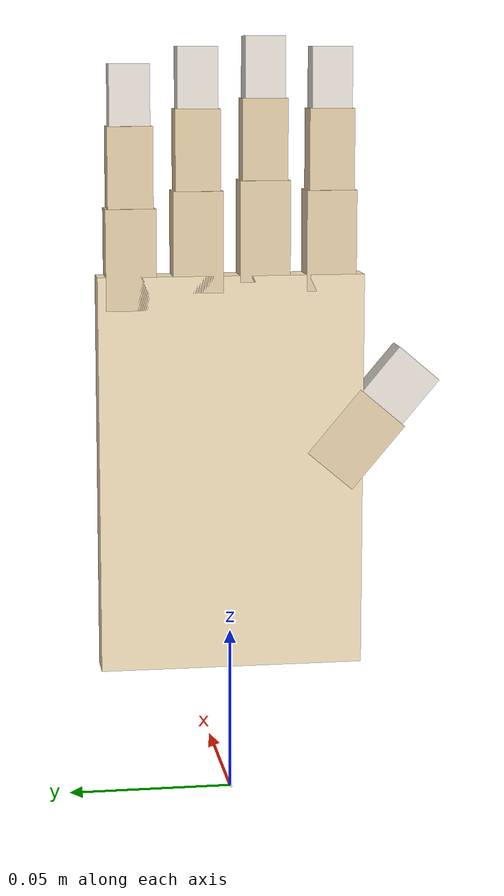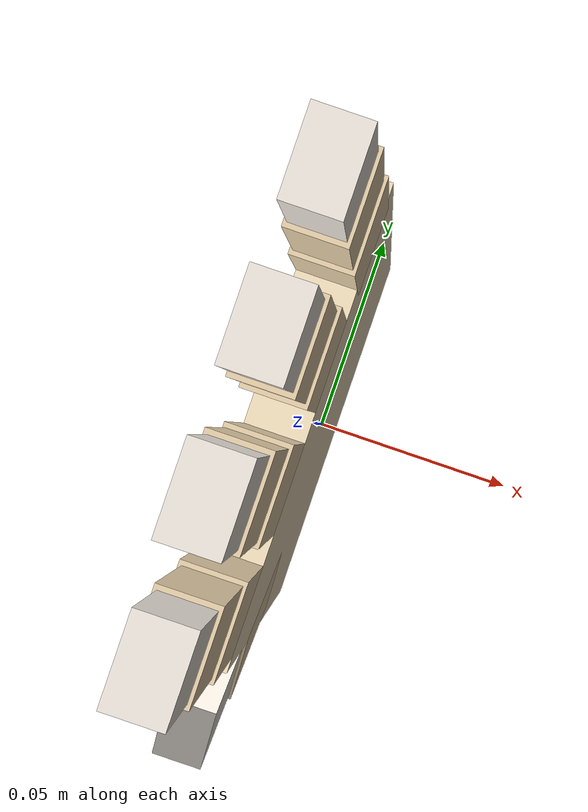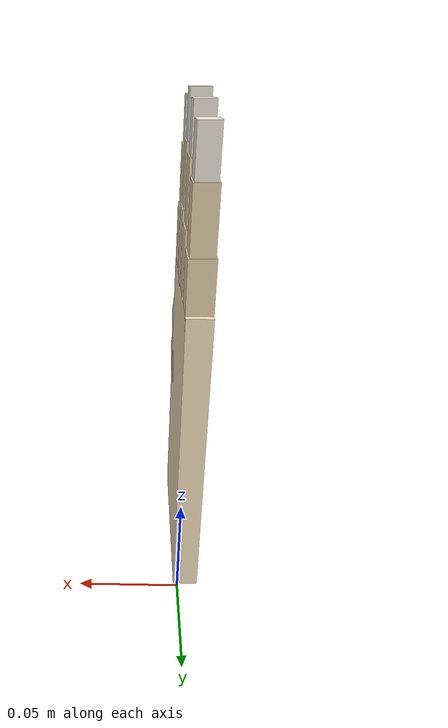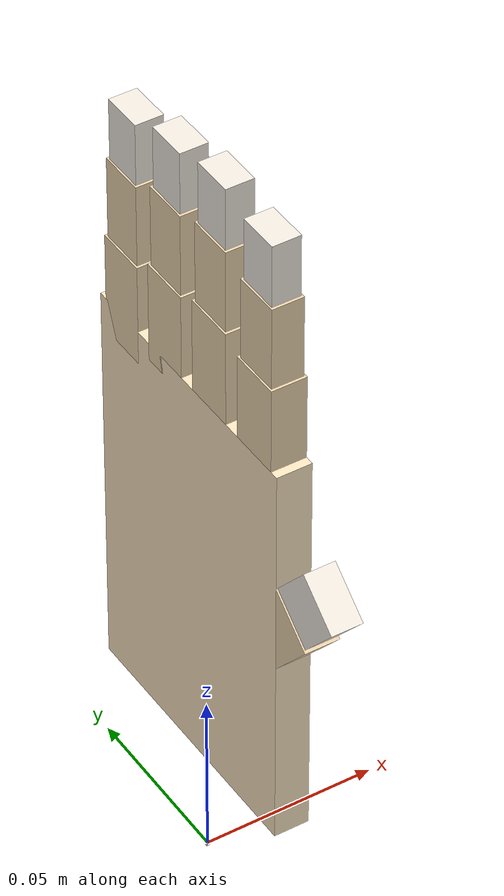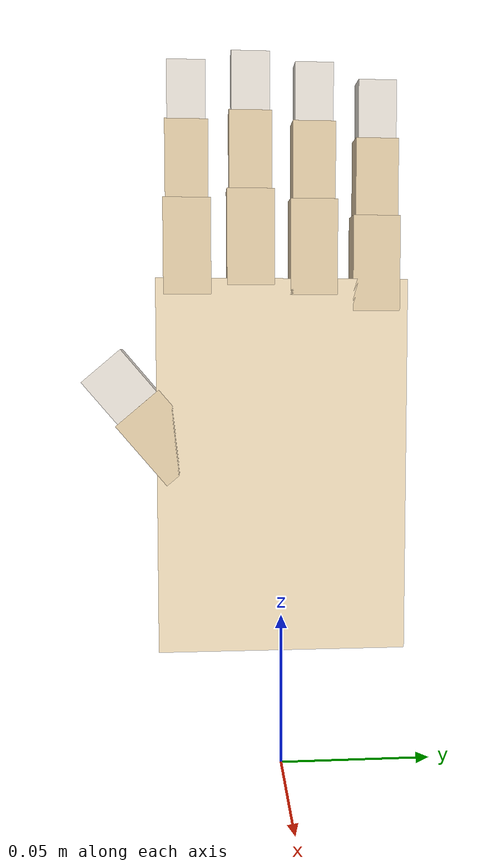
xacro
<?xml version="1.0"?>
<robot name="robotic_hand" xmlns:xacro="http://wiki.ros.org/xacro">

  <!-- Define some properties -->
  <xacro:property name="hand_width" value="0.08" />
  <xacro:property name="hand_length" value="0.12" />
  <xacro:property name="hand_height" value="0.01" />

  <xacro:property name="finger_width" value="0.015" />
  <xacro:property name="finger_length" value="0.03" />
  <xacro:property name="finger_height" value="0.01" />

  <xacro:property name="thumb_width" value="0.018" />
  <xacro:property name="thumb_length" value="0.025" />

  <!-- Materials -->
  <material name="hand_material">
    <color rgba="0.95 0.87 0.73 1.0"/>  <!-- Skin tone -->
  </material>

  <material name="finger_material">
    <color rgba="0.92 0.83 0.68 1.0"/>  <!-- Slightly darker skin tone -->
  </material>

  <material name="palm_material">
    <color rgba="0.98 0.90 0.76 1.0"/>  <!-- Palm color -->
  </material>

  <material name="nail_material">
    <color rgba="0.95 0.92 0.88 1.0"/>  <!-- Nail color -->
  </material>

  <!-- Base world link for proper orientation -->
  <link name="world">
    <visual>
      <geometry>
        <box size="0.001 0.001 0.001"/>
      </geometry>
      <material name="hand_material"/>
      <origin xyz="0 0 0" rpy="0 0 0"/>
    </visual>
    <inertial>
      <mass value="0.001"/>
      <inertia ixx="0.000001" ixy="0" ixz="0" iyy="0.000001" iyz="0" izz="0.000001"/>
      <origin xyz="0 0 0" rpy="0 0 0"/>
    </inertial>
  </link>

  <!-- Base hand link -->
  <link name="hand_base">
    <visual>
      <geometry>
        <box size="${hand_length} ${hand_width} ${hand_height}"/>
      </geometry>
      <material name="palm_material"/>
      <origin xyz="0 0 0" rpy="0 0 0"/>
    </visual>
    <collision>
      <geometry>
        <box size="${hand_length} ${hand_width} ${hand_height}"/>
      </geometry>
      <origin xyz="0 0 0" rpy="0 0 0"/>
    </collision>
    <inertial>
      <mass value="0.5"/>
      <inertia ixx="0.001" ixy="0" ixz="0" iyy="0.001" iyz="0" izz="0.001"/>
      <origin xyz="0 0 0" rpy="0 0 0"/>
    </inertial>
  </link>

  <!-- Joint to orient hand properly (rotate so palm faces camera) -->
  <joint name="hand_orientation_joint" type="fixed">
    <parent link="world"/>
    <child link="hand_base"/>
    <origin xyz="0 0 0.1" rpy="0 -1.5708 0"/>
  </joint>

  <!-- Finger macro -->
  <xacro:macro name="finger" params="prefix x_pos y_pos z_pos rotation">

    <!-- Proximal phalanx (base of finger) -->
    <link name="${prefix}_proximal">
      <visual>
        <geometry>
          <box size="${finger_length} ${finger_width} ${finger_height}"/>
        </geometry>
        <material name="finger_material"/>
        <origin xyz="${finger_length/2} 0 0" rpy="0 0 0"/>
      </visual>
      <collision>
        <geometry>
          <box size="${finger_length} ${finger_width} ${finger_height}"/>
        </geometry>
        <origin xyz="${finger_length/2} 0 0" rpy="0 0 0"/>
      </collision>
      <inertial>
        <mass value="0.05"/>
        <inertia ixx="0.0001" ixy="0" ixz="0" iyy="0.0001" iyz="0" izz="0.0001"/>
        <origin xyz="${finger_length/2} 0 0" rpy="0 0 0"/>
      </inertial>
    </link>

    <!-- Middle phalanx -->
    <link name="${prefix}_middle">
      <visual>
        <geometry>
          <box size="${finger_length*0.8} ${finger_width*0.9} ${finger_height*0.9}"/>
        </geometry>
        <material name="finger_material"/>
        <origin xyz="${finger_length*0.4} 0 0" rpy="0 0 0"/>
      </visual>
      <collision>
        <geometry>
          <box size="${finger_length*0.8} ${finger_width*0.9} ${finger_height*0.9}"/>
        </geometry>
        <origin xyz="${finger_length*0.4} 0 0" rpy="0 0 0"/>
      </collision>
      <inertial>
        <mass value="0.03"/>
        <inertia ixx="0.0001" ixy="0" ixz="0" iyy="0.0001" iyz="0" izz="0.0001"/>
        <origin xyz="${finger_length*0.4} 0 0" rpy="0 0 0"/>
      </inertial>
    </link>

    <!-- Distal phalanx (tip of finger) -->
    <link name="${prefix}_distal">
      <visual>
        <geometry>
          <box size="${finger_length*0.6} ${finger_width*0.8} ${finger_height*0.8}"/>
        </geometry>
        <material name="nail_material"/>
        <origin xyz="${finger_length*0.3} 0 0" rpy="0 0 0"/>
      </visual>
      <collision>
        <geometry>
          <box size="${finger_length*0.6} ${finger_width*0.8} ${finger_height*0.8}"/>
        </geometry>
        <origin xyz="${finger_length*0.3} 0 0" rpy="0 0 0"/>
      </collision>
      <inertial>
        <mass value="0.02"/>
        <inertia ixx="0.0001" ixy="0" ixz="0" iyy="0.0001" iyz="0" izz="0.0001"/>
        <origin xyz="${finger_length*0.3} 0 0" rpy="0 0 0"/>
      </inertial>
    </link>

    <!-- Joints -->
    <!-- Base joint connecting finger to hand -->
    <joint name="${prefix}_base_joint" type="revolute">
      <parent link="hand_base"/>
      <child link="${prefix}_proximal"/>
      <origin xyz="${x_pos} ${y_pos} ${z_pos}" rpy="0 0 ${rotation}"/>
      <axis xyz="0 0 1"/>
      <limit lower="-1.57" upper="1.57" effort="10" velocity="1.0"/>
    </joint>

    <!-- Proximal-middle joint -->
    <joint name="${prefix}_proximal_joint" type="revolute">
      <parent link="${prefix}_proximal"/>
      <child link="${prefix}_middle"/>
      <origin xyz="${finger_length} 0 0" rpy="0 0 0"/>
      <axis xyz="0 1 0"/>
      <limit lower="-1.57" upper="1.57" effort="10" velocity="1.0"/>
    </joint>

    <!-- Middle-distal joint -->
    <joint name="${prefix}_middle_joint" type="revolute">
      <parent link="${prefix}_middle"/>
      <child link="${prefix}_distal"/>
      <origin xyz="${finger_length*0.8} 0 0" rpy="0 0 0"/>
      <axis xyz="0 1 0"/>
      <limit lower="-1.57" upper="1.57" effort="10" velocity="1.0"/>
    </joint>

  </xacro:macro>

  <!-- Thumb macro (slightly different) -->
  <xacro:macro name="thumb" params="prefix x_pos y_pos z_pos rotation">

    <!-- Proximal phalanx -->
    <link name="${prefix}_proximal">
      <visual>
        <geometry>
          <box size="${thumb_length} ${thumb_width} ${finger_height}"/>
        </geometry>
        <material name="finger_material"/>
        <origin xyz="${thumb_length/2} 0 0" rpy="0 0 0"/>
      </visual>
      <collision>
        <geometry>
          <box size="${thumb_length} ${thumb_width} ${finger_height}"/>
        </geometry>
        <origin xyz="${thumb_length/2} 0 0" rpy="0 0 0"/>
      </collision>
      <inertial>
        <mass value="0.04"/>
        <inertia ixx="0.0001" ixy="0" ixz="0" iyy="0.0001" iyz="0" izz="0.0001"/>
        <origin xyz="${thumb_length/2} 0 0" rpy="0 0 0"/>
      </inertial>
    </link>

    <!-- Distal phalanx -->
    <link name="${prefix}_distal">
      <visual>
        <geometry>
          <box size="${thumb_length*0.7} ${thumb_width*0.9} ${finger_height*0.9}"/>
        </geometry>
        <material name="nail_material"/>
        <origin xyz="${thumb_length*0.35} 0 0" rpy="0 0 0"/>
      </visual>
      <collision>
        <geometry>
          <box size="${thumb_length*0.7} ${thumb_width*0.9} ${finger_height*0.9}"/>
        </geometry>
        <origin xyz="${thumb_length*0.35} 0 0" rpy="0 0 0"/>
      </collision>
      <inertial>
        <mass value="0.025"/>
        <inertia ixx="0.0001" ixy="0" ixz="0" iyy="0.0001" iyz="0" izz="0.0001"/>
        <origin xyz="${thumb_length*0.35} 0 0" rpy="0 0 0"/>
      </inertial>
    </link>

    <!-- Joints -->
    <!-- Base joint -->
    <joint name="${prefix}_base_joint" type="revolute">
      <parent link="hand_base"/>
      <child link="${prefix}_proximal"/>
      <origin xyz="${x_pos} ${y_pos} ${z_pos}" rpy="0 0 ${rotation}"/>
      <axis xyz="0 0 1"/>
      <limit lower="-1.57" upper="1.57" effort="10" velocity="1.0"/>
    </joint>

    <!-- Proximal-distal joint -->
    <joint name="${prefix}_proximal_joint" type="revolute">
      <parent link="${prefix}_proximal"/>
      <child link="${prefix}_distal"/>
      <origin xyz="${thumb_length} 0 0" rpy="0 0 0"/>
      <axis xyz="0 1 0"/>
      <limit lower="-1.57" upper="1.57" effort="10" velocity="1.0"/>
    </joint>

  </xacro:macro>

  <!-- Instantiate the fingers -->
  <!-- Thumb (positioned on side of palm) -->
  <xacro:thumb prefix="thumb" x_pos="0.00" y_pos="-0.030" z_pos="0.0" rotation="-0.7"/>

  <!-- Index finger (positioned on front edge of palm, top surface) -->
  <xacro:finger prefix="index" x_pos="0.055" y_pos="-0.030" z_pos="0.0" rotation="0"/>

  <!-- Middle finger (positioned on front edge of palm, top surface, center) -->
  <xacro:finger prefix="middle" x_pos="0.058" y_pos="-0.010" z_pos="0.0" rotation="0"/>

  <!-- Ring finger (positioned on front edge of palm, top surface) -->
  <xacro:finger prefix="ring" x_pos="0.055" y_pos="0.010" z_pos="0.0" rotation="0"/>

  <!-- Pinky finger (positioned on front edge of palm, top surface) -->
  <xacro:finger prefix="pinky" x_pos="0.050" y_pos="0.030" z_pos="0.0" rotation="0"/>

</robot>
